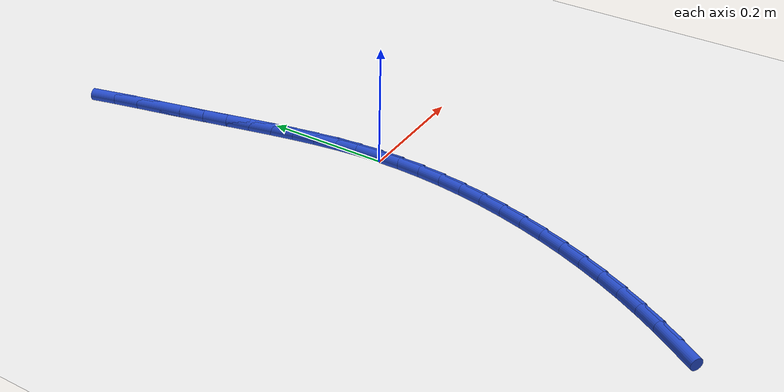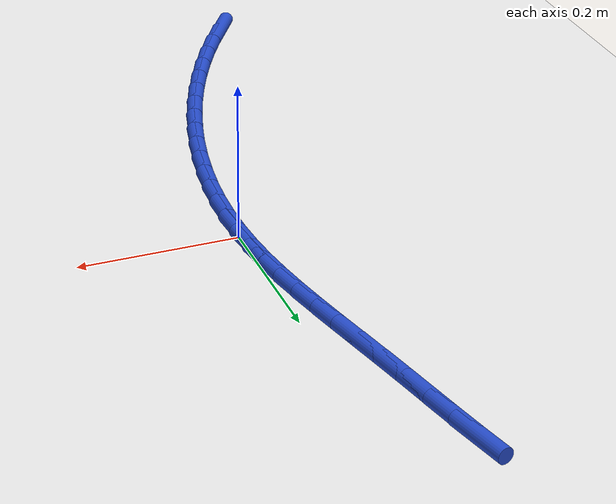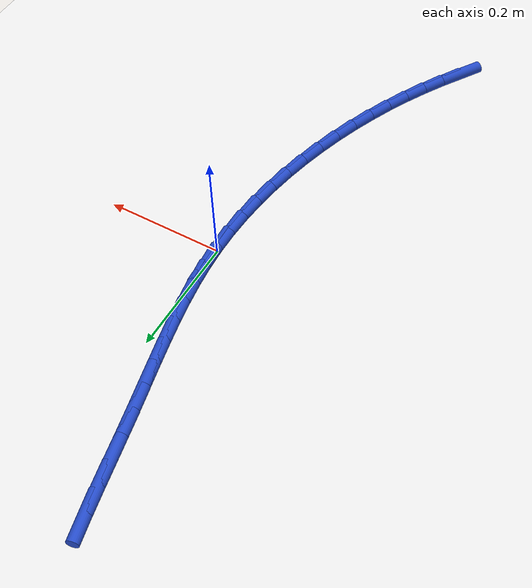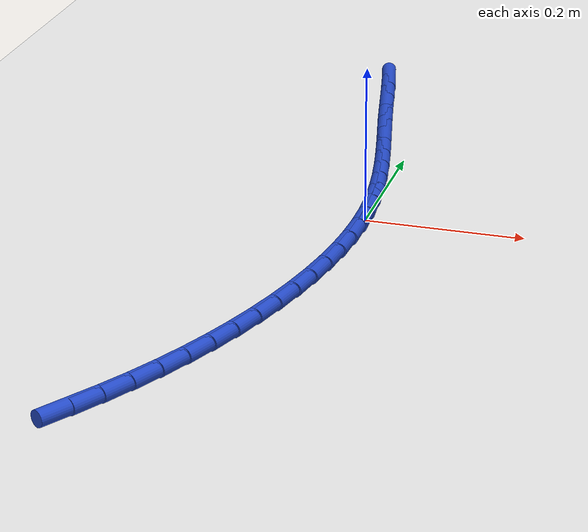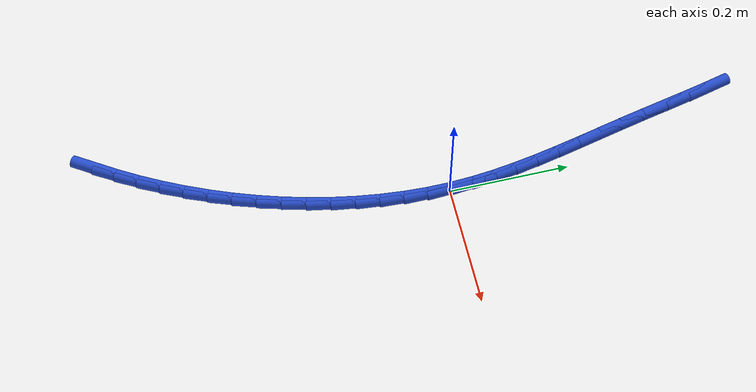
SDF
<sdf version="1.6">
 <world name="default">
  <model name="ground_plane">
   <static>1</static>
   <link name="link">
    <collision name="collision">
     <geometry><plane><normal>0 0 1</normal><size>100 100</size></plane></geometry>
     <surface><friction><ode><mu>100</mu><mu2>50</mu2></ode></friction></surface>
    </collision>
    <visual name="visual">
     <cast_shadows>0</cast_shadows>
     <geometry><plane><normal>0 0 1</normal><size>100 100</size></plane></geometry>
     <material>
      <script><uri>file://media/materials/scripts/gazebo.material</uri><name>Gazebo/WhiteGlow</name></script>
     </material>
    </visual>
   </link>
  </model>
  <model name="line">
   <link name="link_0">
    <pose>-1.734723475976807e-17 -8.326672684688674e-17 0.01 0 1.57 -1.513674692497437</pose>
    <collision name="collision">
     <geometry><cylinder><radius>0.01</radius><length>0.08</length></cylinder></geometry>
    </collision>
    <visual name="visual">
     <material>
      <script><name>Gazebo/Blue</name><uri>file://media/materials/scripts/gazebo.material</uri></script>
     </material>
     <geometry><cylinder><radius>0.01</radius><length>0.08</length></cylinder></geometry>
    </visual>
   </link>
   <link name="link_1">
    <pose>-0.0021709766729972606 0.03796486170194264 0.01 0 1.57 -1.4669972326870937</pose>
    <collision name="collision">
     <geometry><cylinder><radius>0.01</radius><length>0.08</length></cylinder></geometry>
    </collision>
    <visual name="visual">
     <material>
      <script><name>Gazebo/Blue</name><uri>file://media/materials/scripts/gazebo.material</uri></script>
     </material>
     <geometry><cylinder><radius>0.01</radius><length>0.08</length></cylinder></geometry>
    </visual>
   </link>
   <link name="link_2">
    <pose>-0.006098873566817698 0.07567020072753589 0.01 0 1.57 -1.4274373858013119</pose>
    <collision name="collision">
     <geometry><cylinder><radius>0.01</radius><length>0.08</length></cylinder></geometry>
    </collision>
    <visual name="visual">
     <material>
      <script><name>Gazebo/Blue</name><uri>file://media/materials/scripts/gazebo.material</uri></script>
     </material>
     <geometry><cylinder><radius>0.01</radius><length>0.08</length></cylinder></geometry>
    </visual>
   </link>
   <link name="link_3">
    <pose>-0.011529944591555437 0.1132947384150805 0.01 0 1.57 -1.395517599907526</pose>
    <collision name="collision">
     <geometry><cylinder><radius>0.01</radius><length>0.08</length></cylinder></geometry>
    </collision>
    <visual name="visual">
     <material>
      <script><name>Gazebo/Blue</name><uri>file://media/materials/scripts/gazebo.material</uri></script>
     </material>
     <geometry><cylinder><radius>0.01</radius><length>0.08</length></cylinder></geometry>
    </visual>
   </link>
   <link name="link_4">
    <pose>-0.018210443657304606 0.1510171961028775 0.01 0 1.57 -1.3714692530804347</pose>
    <collision name="collision">
     <geometry><cylinder><radius>0.01</radius><length>0.08</length></cylinder></geometry>
    </collision>
    <visual name="visual">
     <material>
      <script><name>Gazebo/Blue</name><uri>file://media/materials/scripts/gazebo.material</uri></script>
     </material>
     <geometry><cylinder><radius>0.01</radius><length>0.08</length></cylinder></geometry>
    </visual>
   </link>
   <link name="link_5">
    <pose>-0.025886624674159295 0.18901629512922768 0.01 0 1.57 -1.3552846814943524</pose>
    <collision name="collision">
     <geometry><cylinder><radius>0.01</radius><length>0.08</length></cylinder></geometry>
    </collision>
    <visual name="visual">
     <material>
      <script><name>Gazebo/Blue</name><uri>file://media/materials/scripts/gazebo.material</uri></script>
     </material>
     <geometry><cylinder><radius>0.01</radius><length>0.08</length></cylinder></geometry>
    </visual>
   </link>
   <link name="link_6">
    <pose>-0.034304741552213636 0.227470756832432 0.01 0 1.57 -1.3467713244768782</pose>
    <collision name="collision">
     <geometry><cylinder><radius>0.01</radius><length>0.08</length></cylinder></geometry>
    </collision>
    <visual name="visual">
     <material>
      <script><name>Gazebo/Blue</name><uri>file://media/materials/scripts/gazebo.material</uri></script>
     </material>
     <geometry><cylinder><radius>0.01</radius><length>0.08</length></cylinder></geometry>
    </visual>
   </link>
   <link name="link_7">
    <pose>-0.043211048201561734 0.2665593025507914 0.01 0 1.57 -1.3455983475022786</pose>
    <collision name="collision">
     <geometry><cylinder><radius>0.01</radius><length>0.08</length></cylinder></geometry>
    </collision>
    <visual name="visual">
     <material>
      <script><name>Gazebo/Blue</name><uri>file://media/materials/scripts/gazebo.material</uri></script>
     </material>
     <geometry><cylinder><radius>0.01</radius><length>0.08</length></cylinder></geometry>
    </visual>
   </link>
   <link name="link_8">
    <pose>-0.0523517985322977 0.30646065362260666 0.01 0 1.57 -1.3513260966886542</pose>
    <collision name="collision">
     <geometry><cylinder><radius>0.01</radius><length>0.08</length></cylinder></geometry>
    </collision>
    <visual name="visual">
     <material>
      <script><name>Gazebo/Blue</name><uri>file://media/materials/scripts/gazebo.material</uri></script>
     </material>
     <geometry><cylinder><radius>0.01</radius><length>0.08</length></cylinder></geometry>
    </visual>
   </link>
   <link name="link_9">
    <pose>-0.0614734442344838 0.34735330036969936 0.01 0 1.57 -1.3596868621328406</pose>
    <collision name="collision">
     <geometry><cylinder><radius>0.01</radius><length>0.08</length></cylinder></geometry>
    </collision>
    <visual name="visual">
     <material>
      <script><name>Gazebo/Blue</name><uri>file://media/materials/scripts/gazebo.material</uri></script>
     </material>
     <geometry><cylinder><radius>0.01</radius><length>0.08</length></cylinder></geometry>
    </visual>
   </link>
   <link name="link_10">
    <pose>-0.07045447994527271 0.38926150062493287 0.01 0 1.57 -1.360450521284114</pose>
    <collision name="collision">
     <geometry><cylinder><radius>0.01</radius><length>0.08</length></cylinder></geometry>
    </collision>
    <visual name="visual">
     <material>
      <script><name>Gazebo/Blue</name><uri>file://media/materials/scripts/gazebo.material</uri></script>
     </material>
     <geometry><cylinder><radius>0.01</radius><length>0.08</length></cylinder></geometry>
    </visual>
   </link>
   <link name="link_11">
    <pose>-0.07953409943745247 0.4317881983480699 0.01 0 1.57 -1.3522462127064545</pose>
    <collision name="collision">
     <geometry><cylinder><radius>0.01</radius><length>0.08</length></cylinder></geometry>
    </collision>
    <visual name="visual">
     <material>
      <script><name>Gazebo/Blue</name><uri>file://media/materials/scripts/gazebo.material</uri></script>
     </material>
     <geometry><cylinder><radius>0.01</radius><length>0.08</length></cylinder></geometry>
    </visual>
   </link>
   <link name="link_12">
    <pose>-0.08901252365885924 0.4744650548343381 0.01 0 1.57 -1.3349976137823825</pose>
    <collision name="collision">
     <geometry><cylinder><radius>0.01</radius><length>0.08</length></cylinder></geometry>
    </collision>
    <visual name="visual">
     <material>
      <script><name>Gazebo/Blue</name><uri>file://media/materials/scripts/gazebo.material</uri></script>
     </material>
     <geometry><cylinder><radius>0.01</radius><length>0.08</length></cylinder></geometry>
    </visual>
   </link>
   <link name="link_165">
    <pose>-0.1701657310316768 -0.5575333433037998 0.01 0 1.57 1.0013297941104984</pose>
    <collision name="collision">
     <geometry><cylinder><radius>0.01</radius><length>0.08</length></cylinder></geometry>
    </collision>
    <visual name="visual">
     <material>
      <script><name>Gazebo/Blue</name><uri>file://media/materials/scripts/gazebo.material</uri></script>
     </material>
     <geometry><cylinder><radius>0.01</radius><length>0.08</length></cylinder></geometry>
    </visual>
   </link>
   <link name="link_166">
    <pose>-0.14903329963183154 -0.5245250683801799 0.01 0 1.57 1.0396782543428578</pose>
    <collision name="collision">
     <geometry><cylinder><radius>0.01</radius><length>0.08</length></cylinder></geometry>
    </collision>
    <visual name="visual">
     <material>
      <script><name>Gazebo/Blue</name><uri>file://media/materials/scripts/gazebo.material</uri></script>
     </material>
     <geometry><cylinder><radius>0.01</radius><length>0.08</length></cylinder></geometry>
    </visual>
   </link>
   <link name="link_167">
    <pose>-0.12909938182593847 -0.49059036902605246 0.01 0 1.57 1.0777543184650369</pose>
    <collision name="collision">
     <geometry><cylinder><radius>0.01</radius><length>0.08</length></cylinder></geometry>
    </collision>
    <visual name="visual">
     <material>
      <script><name>Gazebo/Blue</name><uri>file://media/materials/scripts/gazebo.material</uri></script>
     </material>
     <geometry><cylinder><radius>0.01</radius><length>0.08</length></cylinder></geometry>
    </visual>
   </link>
   <link name="link_168">
    <pose>-0.11040202300362775 -0.4557917648952252 0.01 0 1.57 1.1156619073948657</pose>
    <collision name="collision">
     <geometry><cylinder><radius>0.01</radius><length>0.08</length></cylinder></geometry>
    </collision>
    <visual name="visual">
     <material>
      <script><name>Gazebo/Blue</name><uri>file://media/materials/scripts/gazebo.material</uri></script>
     </material>
     <geometry><cylinder><radius>0.01</radius><length>0.08</length></cylinder></geometry>
    </visual>
   </link>
   <link name="link_169">
    <pose>-0.09297926855452968 -0.42019177564150684 0.01 0 1.57 1.1535029954685747</pose>
    <collision name="collision">
     <geometry><cylinder><radius>0.01</radius><length>0.08</length></cylinder></geometry>
    </collision>
    <visual name="visual">
     <material>
      <script><name>Gazebo/Blue</name><uri>file://media/materials/scripts/gazebo.material</uri></script>
     </material>
     <geometry><cylinder><radius>0.01</radius><length>0.08</length></cylinder></geometry>
    </visual>
   </link>
   <link name="link_170">
    <pose>-0.07686916386827415 -0.3838529209187047 0.01 0 1.57 1.1913773632247235</pose>
    <collision name="collision">
     <geometry><cylinder><radius>0.01</radius><length>0.08</length></cylinder></geometry>
    </collision>
    <visual name="visual">
     <material>
      <script><name>Gazebo/Blue</name><uri>file://media/materials/scripts/gazebo.material</uri></script>
     </material>
     <geometry><cylinder><radius>0.01</radius><length>0.08</length></cylinder></geometry>
    </visual>
   </link>
   <link name="link_171">
    <pose>-0.06210975433449209 -0.3468377203806288 0.01 0 1.57 1.229413298593858</pose>
    <collision name="collision">
     <geometry><cylinder><radius>0.01</radius><length>0.08</length></cylinder></geometry>
    </collision>
    <visual name="visual">
     <material>
      <script><name>Gazebo/Blue</name><uri>file://media/materials/scripts/gazebo.material</uri></script>
     </material>
     <geometry><cylinder><radius>0.01</radius><length>0.08</length></cylinder></geometry>
    </visual>
   </link>
   <link name="link_172">
    <pose>-0.04874255647331348 -0.3092147711160542 0.01 0 1.57 1.2679467691259099</pose>
    <collision name="collision">
     <geometry><cylinder><radius>0.01</radius><length>0.08</length></cylinder></geometry>
    </collision>
    <visual name="visual">
     <material>
      <script><name>Gazebo/Blue</name><uri>file://media/materials/scripts/gazebo.material</uri></script>
     </material>
     <geometry><cylinder><radius>0.01</radius><length>0.08</length></cylinder></geometry>
    </visual>
   </link>
   <link name="link_173">
    <pose>-0.03682960280892861 -0.27108859069570557 0.01 0 1.57 1.3073024288812187</pose>
    <collision name="collision">
     <geometry><cylinder><radius>0.01</radius><length>0.08</length></cylinder></geometry>
    </collision>
    <visual name="visual">
     <material>
      <script><name>Gazebo/Blue</name><uri>file://media/materials/scripts/gazebo.material</uri></script>
     </material>
     <geometry><cylinder><radius>0.01</radius><length>0.08</length></cylinder></geometry>
    </visual>
   </link>
   <link name="link_174">
    <pose>-0.026440436262340373 -0.2325768462818336 0.01 0 1.57 1.3477543914092522</pose>
    <collision name="collision">
     <geometry><cylinder><radius>0.01</radius><length>0.08</length></cylinder></geometry>
    </collision>
    <visual name="visual">
     <material>
      <script><name>Gazebo/Blue</name><uri>file://media/materials/scripts/gazebo.material</uri></script>
     </material>
     <geometry><cylinder><radius>0.01</radius><length>0.08</length></cylinder></geometry>
    </visual>
   </link>
   <link name="link_175">
    <pose>-0.017644611003967713 -0.19379722473274877 0.01 0 1.57 1.389580991454297</pose>
    <collision name="collision">
     <geometry><cylinder><radius>0.01</radius><length>0.08</length></cylinder></geometry>
    </collision>
    <visual name="visual">
     <material>
      <script><name>Gazebo/Blue</name><uri>file://media/materials/scripts/gazebo.material</uri></script>
     </material>
     <geometry><cylinder><radius>0.01</radius><length>0.08</length></cylinder></geometry>
    </visual>
   </link>
   <link name="link_176">
    <pose>-0.010511681204229408 -0.1548674129067609 0.01 0 1.57 1.4330660987799977</pose>
    <collision name="collision">
     <geometry><cylinder><radius>0.01</radius><length>0.08</length></cylinder></geometry>
    </collision>
    <visual name="visual">
     <material>
      <script><name>Gazebo/Blue</name><uri>file://media/materials/scripts/gazebo.material</uri></script>
     </material>
     <geometry><cylinder><radius>0.01</radius><length>0.08</length></cylinder></geometry>
    </visual>
   </link>
   <link name="link_177">
    <pose>-0.005111201033544661 -0.11590509766218197 0.01 0 1.57 1.4784990768571165</pose>
    <collision name="collision">
     <geometry><cylinder><radius>0.01</radius><length>0.08</length></cylinder></geometry>
    </collision>
    <visual name="visual">
     <material>
      <script><name>Gazebo/Blue</name><uri>file://media/materials/scripts/gazebo.material</uri></script>
     </material>
     <geometry><cylinder><radius>0.01</radius><length>0.08</length></cylinder></geometry>
    </visual>
   </link>
   <link name="link_178">
    <pose>-0.0015127246623322316 -0.07702796585732179 0.01 0 1.57 1.5261730567509684</pose>
    <collision name="collision">
     <geometry><cylinder><radius>0.01</radius><length>0.08</length></cylinder></geometry>
    </collision>
    <visual name="visual">
     <material>
      <script><name>Gazebo/Blue</name><uri>file://media/materials/scripts/gazebo.material</uri></script>
     </material>
     <geometry><cylinder><radius>0.01</radius><length>0.08</length></cylinder></geometry>
    </visual>
   </link>
   <link name="link_179">
    <pose>0.00021419373898895738 -0.03835370435049096 0.01 0 1.57 -1.5652116899041084</pose>
    <collision name="collision">
     <geometry><cylinder><radius>0.01</radius><length>0.08</length></cylinder></geometry>
    </collision>
    <visual name="visual">
     <material>
      <script><name>Gazebo/Blue</name><uri>file://media/materials/scripts/gazebo.material</uri></script>
     </material>
     <geometry><cylinder><radius>0.01</radius><length>0.08</length></cylinder></geometry>
    </visual>
   </link>
   <link name="link_180">
    <pose>1.734723475976807e-18 7.632783294297951e-17 0.01 0 1.57 -1.5121840434384421</pose>
    <collision name="collision">
     <geometry><cylinder><radius>0.01</radius><length>0.08</length></cylinder></geometry>
    </collision>
    <visual name="visual">
     <material>
      <script><name>Gazebo/Blue</name><uri>file://media/materials/scripts/gazebo.material</uri></script>
     </material>
     <geometry><cylinder><radius>0.01</radius><length>0.08</length></cylinder></geometry>
    </visual>
   </link>
   <link name="link_181">
    <pose>-0.0022248600497180304 0.03791546033584072 0.01 0 1.57 -1.512184043438443</pose>
    <collision name="collision">
     <geometry><cylinder><radius>0.01</radius><length>0.08</length></cylinder></geometry>
    </collision>
    <visual name="visual">
     <material>
      <script><name>Gazebo/Blue</name><uri>file://media/materials/scripts/gazebo.material</uri></script>
     </material>
     <geometry><cylinder><radius>0.01</radius><length>0.08</length></cylinder></geometry>
    </visual>
   </link>
  </model>
 </world>
</sdf>
